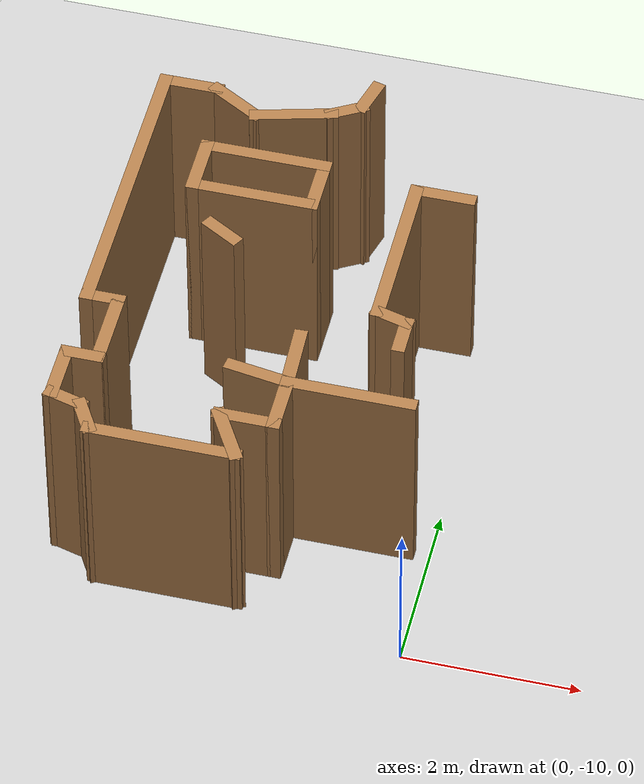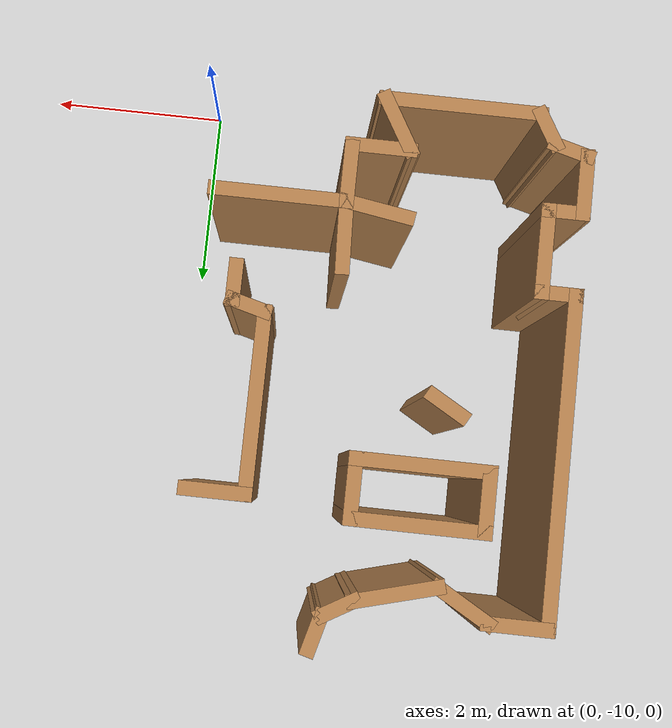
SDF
<sdf version="1.6">
 <world name="default">
  <model name="ground_plane">
   <static>1</static>
   <link name="link">
    <collision name="collision">
     <geometry><plane><normal>0 0 1</normal><size>100 100</size></plane></geometry>
     <surface><friction><ode><mu>100</mu><mu2>50</mu2></ode></friction></surface>
    </collision>
    <visual name="visual">
     <cast_shadows>0</cast_shadows>
     <geometry><plane><normal>0 0 1</normal><size>100 100</size></plane></geometry>
     <material>
      <script><uri>file://media/materials/scripts/gazebo.material</uri><name>Gazebo/Grey</name></script>
     </material>
    </visual>
   </link>
  </model>
  <model name="map_31">
   <link name="Wall_148">
    <pose>-2.51001 -8.20815 0 0 0 -0.158782</pose>
    <visual name="Wall_148_Visual">
     <pose>0 0 1.25 0 -0 0</pose>
     <geometry><box><size>0.796706 0.15 2.5</size></box></geometry>
     <material>
      <script><uri>file://media/materials/scripts/gazebo.material</uri><name>Gazebo/Wood</name></script>
      <ambient>1 1 1 1</ambient>
      <shader type="pixel"/>
     </material>
     <meta><layer>0</layer></meta>
    </visual>
    <collision name="Wall_148_Collision">
     <pose>0 0 1.25 0 -0 0</pose>
     <geometry><box><size>0.796706 0.15 2.5</size></box></geometry>
     <surface>
      <friction>
       <ode><mu>1</mu><mu2>1</mu2><fdir1>0 0 0</fdir1><slip1>0</slip1><slip2>0</slip2></ode>
       <torsional>
        <coefficient>1</coefficient>
        <patch_radius>0</patch_radius>
        <surface_radius>0</surface_radius>
        <use_patch_radius>1</use_patch_radius>
        <ode><slip>0</slip></ode>
       </torsional>
      </friction>
      <bounce><restitution_coefficient>0</restitution_coefficient><threshold>1e+06</threshold></bounce>
      <contact>
       <collide_without_contact>0</collide_without_contact>
       <collide_without_contact_bitmask>1</collide_without_contact_bitmask>
       <collide_bitmask>1</collide_bitmask>
       <ode>
        <soft_cfm>0</soft_cfm>
        <soft_erp>0.2</soft_erp>
        <kp>1e+13</kp>
        <kd>1</kd>
        <max_vel>0.01</max_vel>
        <min_depth>0</min_depth>
       </ode>
       <bullet>
        <split_impulse>1</split_impulse>
        <split_impulse_penetration_threshold>-0.01</split_impulse_penetration_threshold>
        <soft_cfm>0</soft_cfm>
        <soft_erp>0.2</soft_erp>
        <kp>1e+13</kp>
        <kd>1</kd>
       </bullet>
      </contact>
     </surface>
    </collision>
   </link>
   <link name="Wall_150">
    <pose>-2.20411 -7.91754 0 0 0 -1.53165</pose>
    <visual name="Wall_150_Visual">
     <pose>0 0 1.25 0 -0 0</pose>
     <geometry><box><size>0.833993 0.15 2.5</size></box></geometry>
     <material>
      <script><uri>file://media/materials/scripts/gazebo.material</uri><name>Gazebo/Wood</name></script>
      <ambient>1 1 1 1</ambient>
      <shader type="pixel"/>
     </material>
     <meta><layer>0</layer></meta>
    </visual>
    <collision name="Wall_150_Collision">
     <pose>0 0 1.25 0 -0 0</pose>
     <geometry><box><size>0.833993 0.15 2.5</size></box></geometry>
     <surface>
      <friction>
       <ode><mu>1</mu><mu2>1</mu2><fdir1>0 0 0</fdir1><slip1>0</slip1><slip2>0</slip2></ode>
       <torsional>
        <coefficient>1</coefficient>
        <patch_radius>0</patch_radius>
        <surface_radius>0</surface_radius>
        <use_patch_radius>1</use_patch_radius>
        <ode><slip>0</slip></ode>
       </torsional>
      </friction>
      <bounce><restitution_coefficient>0</restitution_coefficient><threshold>1e+06</threshold></bounce>
      <contact>
       <collide_without_contact>0</collide_without_contact>
       <collide_without_contact_bitmask>1</collide_without_contact_bitmask>
       <collide_bitmask>1</collide_bitmask>
       <ode>
        <soft_cfm>0</soft_cfm>
        <soft_erp>0.2</soft_erp>
        <kp>1e+13</kp>
        <kd>1</kd>
        <max_vel>0.01</max_vel>
        <min_depth>0</min_depth>
       </ode>
       <bullet>
        <split_impulse>1</split_impulse>
        <split_impulse_penetration_threshold>-0.01</split_impulse_penetration_threshold>
        <soft_cfm>0</soft_cfm>
        <soft_erp>0.2</soft_erp>
        <kp>1e+13</kp>
        <kd>1</kd>
       </bullet>
      </contact>
     </surface>
    </collision>
   </link>
   <link name="Wall_156">
    <pose>-3.41191 -6.28675 0 0 0 -0.523599</pose>
    <visual name="Wall_156_Visual">
     <pose>0 0 1.25 0 -0 0</pose>
     <geometry><box><size>0.5 0.15 2.5</size></box></geometry>
     <material>
      <script><uri>file://media/materials/scripts/gazebo.material</uri><name>Gazebo/Wood</name></script>
      <ambient>1 1 1 1</ambient>
      <shader type="pixel"/>
     </material>
     <meta><layer>0</layer></meta>
    </visual>
    <collision name="Wall_156_Collision">
     <pose>0 0 1.25 0 -0 0</pose>
     <geometry><box><size>0.5 0.15 2.5</size></box></geometry>
     <surface>
      <friction>
       <ode><mu>1</mu><mu2>1</mu2><fdir1>0 0 0</fdir1><slip1>0</slip1><slip2>0</slip2></ode>
       <torsional>
        <coefficient>1</coefficient>
        <patch_radius>0</patch_radius>
        <surface_radius>0</surface_radius>
        <use_patch_radius>1</use_patch_radius>
        <ode><slip>0</slip></ode>
       </torsional>
      </friction>
      <bounce><restitution_coefficient>0</restitution_coefficient><threshold>1e+06</threshold></bounce>
      <contact>
       <collide_without_contact>0</collide_without_contact>
       <collide_without_contact_bitmask>1</collide_without_contact_bitmask>
       <collide_bitmask>1</collide_bitmask>
       <ode>
        <soft_cfm>0</soft_cfm>
        <soft_erp>0.2</soft_erp>
        <kp>1e+13</kp>
        <kd>1</kd>
        <max_vel>0.01</max_vel>
        <min_depth>0</min_depth>
       </ode>
       <bullet>
        <split_impulse>1</split_impulse>
        <split_impulse_penetration_threshold>-0.01</split_impulse_penetration_threshold>
        <soft_cfm>0</soft_cfm>
        <soft_erp>0.2</soft_erp>
        <kp>1e+13</kp>
        <kd>1</kd>
       </bullet>
      </contact>
     </surface>
    </collision>
   </link>
   <link name="Wall_158">
    <pose>-3.89995 -5.36741 0 0 0 -1.5708</pose>
    <visual name="Wall_158_Visual">
     <pose>0 0 1.25 0 -0 0</pose>
     <geometry><box><size>0.75 0.15 2.5</size></box></geometry>
     <material>
      <script><uri>file://media/materials/scripts/gazebo.material</uri><name>Gazebo/Wood</name></script>
      <ambient>1 1 1 1</ambient>
      <shader type="pixel"/>
     </material>
     <meta><layer>0</layer></meta>
    </visual>
    <collision name="Wall_158_Collision">
     <pose>0 0 1.25 0 -0 0</pose>
     <geometry><box><size>0.75 0.15 2.5</size></box></geometry>
     <surface>
      <friction>
       <ode><mu>1</mu><mu2>1</mu2><fdir1>0 0 0</fdir1><slip1>0</slip1><slip2>0</slip2></ode>
       <torsional>
        <coefficient>1</coefficient>
        <patch_radius>0</patch_radius>
        <surface_radius>0</surface_radius>
        <use_patch_radius>1</use_patch_radius>
        <ode><slip>0</slip></ode>
       </torsional>
      </friction>
      <bounce><restitution_coefficient>0</restitution_coefficient><threshold>1e+06</threshold></bounce>
      <contact>
       <collide_without_contact>0</collide_without_contact>
       <collide_without_contact_bitmask>1</collide_without_contact_bitmask>
       <collide_bitmask>1</collide_bitmask>
       <ode>
        <soft_cfm>0</soft_cfm>
        <soft_erp>0.2</soft_erp>
        <kp>1e+13</kp>
        <kd>1</kd>
        <max_vel>0.01</max_vel>
        <min_depth>0</min_depth>
       </ode>
       <bullet>
        <split_impulse>1</split_impulse>
        <split_impulse_penetration_threshold>-0.01</split_impulse_penetration_threshold>
        <soft_cfm>0</soft_cfm>
        <soft_erp>0.2</soft_erp>
        <kp>1e+13</kp>
        <kd>1</kd>
       </bullet>
      </contact>
     </surface>
    </collision>
   </link>
   <link name="Wall_159">
    <pose>-3.22495 -5.66741 0 0 -0 0</pose>
    <visual name="Wall_159_Visual">
     <pose>0 0 1.25 0 -0 0</pose>
     <geometry><box><size>1.5 0.15 2.5</size></box></geometry>
     <material>
      <script><uri>file://media/materials/scripts/gazebo.material</uri><name>Gazebo/Wood</name></script>
      <ambient>1 1 1 1</ambient>
      <shader type="pixel"/>
     </material>
     <meta><layer>0</layer></meta>
    </visual>
    <collision name="Wall_159_Collision">
     <pose>0 0 1.25 0 -0 0</pose>
     <geometry><box><size>1.5 0.15 2.5</size></box></geometry>
     <surface>
      <friction>
       <ode><mu>1</mu><mu2>1</mu2><fdir1>0 0 0</fdir1><slip1>0</slip1><slip2>0</slip2></ode>
       <torsional>
        <coefficient>1</coefficient>
        <patch_radius>0</patch_radius>
        <surface_radius>0</surface_radius>
        <use_patch_radius>1</use_patch_radius>
        <ode><slip>0</slip></ode>
       </torsional>
      </friction>
      <bounce><restitution_coefficient>0</restitution_coefficient><threshold>1e+06</threshold></bounce>
      <contact>
       <collide_without_contact>0</collide_without_contact>
       <collide_without_contact_bitmask>1</collide_without_contact_bitmask>
       <collide_bitmask>1</collide_bitmask>
       <ode>
        <soft_cfm>0</soft_cfm>
        <soft_erp>0.2</soft_erp>
        <kp>1e+13</kp>
        <kd>1</kd>
        <max_vel>0.01</max_vel>
        <min_depth>0</min_depth>
       </ode>
       <bullet>
        <split_impulse>1</split_impulse>
        <split_impulse_penetration_threshold>-0.01</split_impulse_penetration_threshold>
        <soft_cfm>0</soft_cfm>
        <soft_erp>0.2</soft_erp>
        <kp>1e+13</kp>
        <kd>1</kd>
       </bullet>
      </contact>
     </surface>
    </collision>
   </link>
   <link name="Wall_160">
    <pose>-2.54996 -5.36741 0 0 -0 1.5708</pose>
    <visual name="Wall_160_Visual">
     <pose>0 0 1.25 0 -0 0</pose>
     <geometry><box><size>0.75 0.15 2.5</size></box></geometry>
     <material>
      <script><uri>file://media/materials/scripts/gazebo.material</uri><name>Gazebo/Wood</name></script>
      <ambient>1 1 1 1</ambient>
      <shader type="pixel"/>
     </material>
     <meta><layer>0</layer></meta>
    </visual>
    <collision name="Wall_160_Collision">
     <pose>0 0 1.25 0 -0 0</pose>
     <geometry><box><size>0.75 0.15 2.5</size></box></geometry>
     <surface>
      <friction>
       <ode><mu>1</mu><mu2>1</mu2><fdir1>0 0 0</fdir1><slip1>0</slip1><slip2>0</slip2></ode>
       <torsional>
        <coefficient>1</coefficient>
        <patch_radius>0</patch_radius>
        <surface_radius>0</surface_radius>
        <use_patch_radius>1</use_patch_radius>
        <ode><slip>0</slip></ode>
       </torsional>
      </friction>
      <bounce><restitution_coefficient>0</restitution_coefficient><threshold>1e+06</threshold></bounce>
      <contact>
       <collide_without_contact>0</collide_without_contact>
       <collide_without_contact_bitmask>1</collide_without_contact_bitmask>
       <collide_bitmask>1</collide_bitmask>
       <ode>
        <soft_cfm>0</soft_cfm>
        <soft_erp>0.2</soft_erp>
        <kp>1e+13</kp>
        <kd>1</kd>
        <max_vel>0.01</max_vel>
        <min_depth>0</min_depth>
       </ode>
       <bullet>
        <split_impulse>1</split_impulse>
        <split_impulse_penetration_threshold>-0.01</split_impulse_penetration_threshold>
        <soft_cfm>0</soft_cfm>
        <soft_erp>0.2</soft_erp>
        <kp>1e+13</kp>
        <kd>1</kd>
       </bullet>
      </contact>
     </surface>
    </collision>
   </link>
   <link name="Wall_161">
    <pose>-3.22495 -5.06741 0 0 -0 3.14159</pose>
    <visual name="Wall_161_Visual">
     <pose>0 0 1.25 0 -0 0</pose>
     <geometry><box><size>1.5 0.15 2.5</size></box></geometry>
     <material>
      <script><uri>file://media/materials/scripts/gazebo.material</uri><name>Gazebo/Wood</name></script>
      <ambient>1 1 1 1</ambient>
      <shader type="pixel"/>
     </material>
     <meta><layer>0</layer></meta>
    </visual>
    <collision name="Wall_161_Collision">
     <pose>0 0 1.25 0 -0 0</pose>
     <geometry><box><size>1.5 0.15 2.5</size></box></geometry>
     <surface>
      <friction>
       <ode><mu>1</mu><mu2>1</mu2><fdir1>0 0 0</fdir1><slip1>0</slip1><slip2>0</slip2></ode>
       <torsional>
        <coefficient>1</coefficient>
        <patch_radius>0</patch_radius>
        <surface_radius>0</surface_radius>
        <use_patch_radius>1</use_patch_radius>
        <ode><slip>0</slip></ode>
       </torsional>
      </friction>
      <bounce><restitution_coefficient>0</restitution_coefficient><threshold>1e+06</threshold></bounce>
      <contact>
       <collide_without_contact>0</collide_without_contact>
       <collide_without_contact_bitmask>1</collide_without_contact_bitmask>
       <collide_bitmask>1</collide_bitmask>
       <ode>
        <soft_cfm>0</soft_cfm>
        <soft_erp>0.2</soft_erp>
        <kp>1e+13</kp>
        <kd>1</kd>
        <max_vel>0.01</max_vel>
        <min_depth>0</min_depth>
       </ode>
       <bullet>
        <split_impulse>1</split_impulse>
        <split_impulse_penetration_threshold>-0.01</split_impulse_penetration_threshold>
        <soft_cfm>0</soft_cfm>
        <soft_erp>0.2</soft_erp>
        <kp>1e+13</kp>
        <kd>1</kd>
       </bullet>
      </contact>
     </surface>
    </collision>
   </link>
   <link name="Wall_28">
    <pose>-2.31474 -3.92116 0 0 0 -1.8326</pose>
    <visual name="Wall_28_Visual">
     <pose>0 0 1.25 0 -0 0</pose>
     <geometry><box><size>0.5 0.15 2.5</size></box></geometry>
     <material>
      <script><uri>file://media/materials/scripts/gazebo.material</uri><name>Gazebo/Wood</name></script>
      <ambient>1 1 1 1</ambient>
      <shader type="pixel"/>
     </material>
     <meta><layer>0</layer></meta>
    </visual>
    <collision name="Wall_28_Collision">
     <pose>0 0 1.25 0 -0 0</pose>
     <geometry><box><size>0.5 0.15 2.5</size></box></geometry>
     <surface>
      <friction>
       <ode><mu>1</mu><mu2>1</mu2><fdir1>0 0 0</fdir1><slip1>0</slip1><slip2>0</slip2></ode>
       <torsional>
        <coefficient>1</coefficient>
        <patch_radius>0</patch_radius>
        <surface_radius>0</surface_radius>
        <use_patch_radius>1</use_patch_radius>
        <ode><slip>0</slip></ode>
       </torsional>
      </friction>
      <bounce><restitution_coefficient>0</restitution_coefficient><threshold>1e+06</threshold></bounce>
      <contact>
       <collide_without_contact>0</collide_without_contact>
       <collide_without_contact_bitmask>1</collide_without_contact_bitmask>
       <collide_bitmask>1</collide_bitmask>
       <ode>
        <soft_cfm>0</soft_cfm>
        <soft_erp>0.2</soft_erp>
        <kp>1e+13</kp>
        <kd>1</kd>
        <max_vel>0.01</max_vel>
        <min_depth>0</min_depth>
       </ode>
       <bullet>
        <split_impulse>1</split_impulse>
        <split_impulse_penetration_threshold>-0.01</split_impulse_penetration_threshold>
        <soft_cfm>0</soft_cfm>
        <soft_erp>0.2</soft_erp>
        <kp>1e+13</kp>
        <kd>1</kd>
       </bullet>
      </contact>
     </surface>
    </collision>
   </link>
   <link name="Wall_29">
    <pose>-2.51159 -4.1777 0 0 0 -2.61799</pose>
    <visual name="Wall_29_Visual">
     <pose>0 0 1.25 0 -0 0</pose>
     <geometry><box><size>0.5 0.15 2.5</size></box></geometry>
     <material>
      <script><uri>file://media/materials/scripts/gazebo.material</uri><name>Gazebo/Wood</name></script>
      <ambient>1 1 1 1</ambient>
      <shader type="pixel"/>
     </material>
     <meta><layer>0</layer></meta>
    </visual>
    <collision name="Wall_29_Collision">
     <pose>0 0 1.25 0 -0 0</pose>
     <geometry><box><size>0.5 0.15 2.5</size></box></geometry>
     <surface>
      <friction>
       <ode><mu>1</mu><mu2>1</mu2><fdir1>0 0 0</fdir1><slip1>0</slip1><slip2>0</slip2></ode>
       <torsional>
        <coefficient>1</coefficient>
        <patch_radius>0</patch_radius>
        <surface_radius>0</surface_radius>
        <use_patch_radius>1</use_patch_radius>
        <ode><slip>0</slip></ode>
       </torsional>
      </friction>
      <bounce><restitution_coefficient>0</restitution_coefficient><threshold>1e+06</threshold></bounce>
      <contact>
       <collide_without_contact>0</collide_without_contact>
       <collide_without_contact_bitmask>1</collide_without_contact_bitmask>
       <collide_bitmask>1</collide_bitmask>
       <ode>
        <soft_cfm>0</soft_cfm>
        <soft_erp>0.2</soft_erp>
        <kp>1e+13</kp>
        <kd>1</kd>
        <max_vel>0.01</max_vel>
        <min_depth>0</min_depth>
       </ode>
       <bullet>
        <split_impulse>1</split_impulse>
        <split_impulse_penetration_threshold>-0.01</split_impulse_penetration_threshold>
        <soft_cfm>0</soft_cfm>
        <soft_erp>0.2</soft_erp>
        <kp>1e+13</kp>
        <kd>1</kd>
       </bullet>
      </contact>
     </surface>
    </collision>
   </link>
   <link name="Wall_32">
    <pose>-3.07367 -4.3752 0 0 0 -2.87979</pose>
    <visual name="Wall_32_Visual">
     <pose>0 0 1.25 0 -0 0</pose>
     <geometry><box><size>1 0.15 2.5</size></box></geometry>
     <material>
      <script><uri>file://media/materials/scripts/gazebo.material</uri><name>Gazebo/Wood</name></script>
      <ambient>1 1 1 1</ambient>
      <shader type="pixel"/>
     </material>
     <meta><layer>0</layer></meta>
    </visual>
    <collision name="Wall_32_Collision">
     <pose>0 0 1.25 0 -0 0</pose>
     <geometry><box><size>1 0.15 2.5</size></box></geometry>
     <surface>
      <friction>
       <ode><mu>1</mu><mu2>1</mu2><fdir1>0 0 0</fdir1><slip1>0</slip1><slip2>0</slip2></ode>
       <torsional>
        <coefficient>1</coefficient>
        <patch_radius>0</patch_radius>
        <surface_radius>0</surface_radius>
        <use_patch_radius>1</use_patch_radius>
        <ode><slip>0</slip></ode>
       </torsional>
      </friction>
      <bounce><restitution_coefficient>0</restitution_coefficient><threshold>1e+06</threshold></bounce>
      <contact>
       <collide_without_contact>0</collide_without_contact>
       <collide_without_contact_bitmask>1</collide_without_contact_bitmask>
       <collide_bitmask>1</collide_bitmask>
       <ode>
        <soft_cfm>0</soft_cfm>
        <soft_erp>0.2</soft_erp>
        <kp>1e+13</kp>
        <kd>1</kd>
        <max_vel>0.01</max_vel>
        <min_depth>0</min_depth>
       </ode>
       <bullet>
        <split_impulse>1</split_impulse>
        <split_impulse_penetration_threshold>-0.01</split_impulse_penetration_threshold>
        <soft_cfm>0</soft_cfm>
        <soft_erp>0.2</soft_erp>
        <kp>1e+13</kp>
        <kd>1</kd>
       </bullet>
      </contact>
     </surface>
    </collision>
   </link>
   <link name="Wall_33">
    <pose>-3.74399 -4.3352 0 0 -0 2.61799</pose>
    <visual name="Wall_33_Visual">
     <pose>0 0 1.25 0 -0 0</pose>
     <geometry><box><size>0.75 0.15 2.5</size></box></geometry>
     <material>
      <script><uri>file://media/materials/scripts/gazebo.material</uri><name>Gazebo/Wood</name></script>
      <ambient>1 1 1 1</ambient>
      <shader type="pixel"/>
     </material>
     <meta><layer>0</layer></meta>
    </visual>
    <collision name="Wall_33_Collision">
     <pose>0 0 1.25 0 -0 0</pose>
     <geometry><box><size>0.75 0.15 2.5</size></box></geometry>
     <surface>
      <friction>
       <ode><mu>1</mu><mu2>1</mu2><fdir1>0 0 0</fdir1><slip1>0</slip1><slip2>0</slip2></ode>
       <torsional>
        <coefficient>1</coefficient>
        <patch_radius>0</patch_radius>
        <surface_radius>0</surface_radius>
        <use_patch_radius>1</use_patch_radius>
        <ode><slip>0</slip></ode>
       </torsional>
      </friction>
      <bounce><restitution_coefficient>0</restitution_coefficient><threshold>1e+06</threshold></bounce>
      <contact>
       <collide_without_contact>0</collide_without_contact>
       <collide_without_contact_bitmask>1</collide_without_contact_bitmask>
       <collide_bitmask>1</collide_bitmask>
       <ode>
        <soft_cfm>0</soft_cfm>
        <soft_erp>0.2</soft_erp>
        <kp>1e+13</kp>
        <kd>1</kd>
        <max_vel>0.01</max_vel>
        <min_depth>0</min_depth>
       </ode>
       <bullet>
        <split_impulse>1</split_impulse>
        <split_impulse_penetration_threshold>-0.01</split_impulse_penetration_threshold>
        <soft_cfm>0</soft_cfm>
        <soft_erp>0.2</soft_erp>
        <kp>1e+13</kp>
        <kd>1</kd>
       </bullet>
      </contact>
     </surface>
    </collision>
   </link>
   <link name="Wall_34">
    <pose>-4.3038 -4.1852 0 0 -0 3.14159</pose>
    <visual name="Wall_34_Visual">
     <pose>0 0 1.25 0 -0 0</pose>
     <geometry><box><size>0.75 0.15 2.5</size></box></geometry>
     <material>
      <script><uri>file://media/materials/scripts/gazebo.material</uri><name>Gazebo/Wood</name></script>
      <ambient>1 1 1 1</ambient>
      <shader type="pixel"/>
     </material>
     <meta><layer>0</layer></meta>
    </visual>
    <collision name="Wall_34_Collision">
     <pose>0 0 1.25 0 -0 0</pose>
     <geometry><box><size>0.75 0.15 2.5</size></box></geometry>
     <surface>
      <friction>
       <ode><mu>1</mu><mu2>1</mu2><fdir1>0 0 0</fdir1><slip1>0</slip1><slip2>0</slip2></ode>
       <torsional>
        <coefficient>1</coefficient>
        <patch_radius>0</patch_radius>
        <surface_radius>0</surface_radius>
        <use_patch_radius>1</use_patch_radius>
        <ode><slip>0</slip></ode>
       </torsional>
      </friction>
      <bounce><restitution_coefficient>0</restitution_coefficient><threshold>1e+06</threshold></bounce>
      <contact>
       <collide_without_contact>0</collide_without_contact>
       <collide_without_contact_bitmask>1</collide_without_contact_bitmask>
       <collide_bitmask>1</collide_bitmask>
       <ode>
        <soft_cfm>0</soft_cfm>
        <soft_erp>0.2</soft_erp>
        <kp>1e+13</kp>
        <kd>1</kd>
        <max_vel>0.01</max_vel>
        <min_depth>0</min_depth>
       </ode>
       <bullet>
        <split_impulse>1</split_impulse>
        <split_impulse_penetration_threshold>-0.01</split_impulse_penetration_threshold>
        <soft_cfm>0</soft_cfm>
        <soft_erp>0.2</soft_erp>
        <kp>1e+13</kp>
        <kd>1</kd>
       </bullet>
      </contact>
     </surface>
    </collision>
   </link>
   <link name="Wall_35">
    <pose>-4.6038 -5.8602 0 0 0 -1.5708</pose>
    <visual name="Wall_35_Visual">
     <pose>0 0 1.25 0 -0 0</pose>
     <geometry><box><size>3.5 0.15 2.5</size></box></geometry>
     <material>
      <script><uri>file://media/materials/scripts/gazebo.material</uri><name>Gazebo/Wood</name></script>
      <ambient>1 1 1 1</ambient>
      <shader type="pixel"/>
     </material>
     <meta><layer>0</layer></meta>
    </visual>
    <collision name="Wall_35_Collision">
     <pose>0 0 1.25 0 -0 0</pose>
     <geometry><box><size>3.5 0.15 2.5</size></box></geometry>
     <surface>
      <friction>
       <ode><mu>1</mu><mu2>1</mu2><fdir1>0 0 0</fdir1><slip1>0</slip1><slip2>0</slip2></ode>
       <torsional>
        <coefficient>1</coefficient>
        <patch_radius>0</patch_radius>
        <surface_radius>0</surface_radius>
        <use_patch_radius>1</use_patch_radius>
        <ode><slip>0</slip></ode>
       </torsional>
      </friction>
      <bounce><restitution_coefficient>0</restitution_coefficient><threshold>1e+06</threshold></bounce>
      <contact>
       <collide_without_contact>0</collide_without_contact>
       <collide_without_contact_bitmask>1</collide_without_contact_bitmask>
       <collide_bitmask>1</collide_bitmask>
       <ode>
        <soft_cfm>0</soft_cfm>
        <soft_erp>0.2</soft_erp>
        <kp>1e+13</kp>
        <kd>1</kd>
        <max_vel>0.01</max_vel>
        <min_depth>0</min_depth>
       </ode>
       <bullet>
        <split_impulse>1</split_impulse>
        <split_impulse_penetration_threshold>-0.01</split_impulse_penetration_threshold>
        <soft_cfm>0</soft_cfm>
        <soft_erp>0.2</soft_erp>
        <kp>1e+13</kp>
        <kd>1</kd>
       </bullet>
      </contact>
     </surface>
    </collision>
   </link>
   <link name="Wall_36">
    <pose>-4.4288 -7.5352 0 0 -0 0</pose>
    <visual name="Wall_36_Visual">
     <pose>0 0 1.25 0 -0 0</pose>
     <geometry><box><size>0.5 0.15 2.5</size></box></geometry>
     <material>
      <script><uri>file://media/materials/scripts/gazebo.material</uri><name>Gazebo/Wood</name></script>
      <ambient>1 1 1 1</ambient>
      <shader type="pixel"/>
     </material>
     <meta><layer>0</layer></meta>
    </visual>
    <collision name="Wall_36_Collision">
     <pose>0 0 1.25 0 -0 0</pose>
     <geometry><box><size>0.5 0.15 2.5</size></box></geometry>
     <surface>
      <friction>
       <ode><mu>1</mu><mu2>1</mu2><fdir1>0 0 0</fdir1><slip1>0</slip1><slip2>0</slip2></ode>
       <torsional>
        <coefficient>1</coefficient>
        <patch_radius>0</patch_radius>
        <surface_radius>0</surface_radius>
        <use_patch_radius>1</use_patch_radius>
        <ode><slip>0</slip></ode>
       </torsional>
      </friction>
      <bounce><restitution_coefficient>0</restitution_coefficient><threshold>1e+06</threshold></bounce>
      <contact>
       <collide_without_contact>0</collide_without_contact>
       <collide_without_contact_bitmask>1</collide_without_contact_bitmask>
       <collide_bitmask>1</collide_bitmask>
       <ode>
        <soft_cfm>0</soft_cfm>
        <soft_erp>0.2</soft_erp>
        <kp>1e+13</kp>
        <kd>1</kd>
        <max_vel>0.01</max_vel>
        <min_depth>0</min_depth>
       </ode>
       <bullet>
        <split_impulse>1</split_impulse>
        <split_impulse_penetration_threshold>-0.01</split_impulse_penetration_threshold>
        <soft_cfm>0</soft_cfm>
        <soft_erp>0.2</soft_erp>
        <kp>1e+13</kp>
        <kd>1</kd>
       </bullet>
      </contact>
     </surface>
    </collision>
   </link>
   <link name="Wall_37">
    <pose>-4.2538 -7.9602 0 0 0 -1.5708</pose>
    <visual name="Wall_37_Visual">
     <pose>0 0 1.25 0 -0 0</pose>
     <geometry><box><size>1 0.15 2.5</size></box></geometry>
     <material>
      <script><uri>file://media/materials/scripts/gazebo.material</uri><name>Gazebo/Wood</name></script>
      <ambient>1 1 1 1</ambient>
      <shader type="pixel"/>
     </material>
     <meta><layer>0</layer></meta>
    </visual>
    <collision name="Wall_37_Collision">
     <pose>0 0 1.25 0 -0 0</pose>
     <geometry><box><size>1 0.15 2.5</size></box></geometry>
     <surface>
      <friction>
       <ode><mu>1</mu><mu2>1</mu2><fdir1>0 0 0</fdir1><slip1>0</slip1><slip2>0</slip2></ode>
       <torsional>
        <coefficient>1</coefficient>
        <patch_radius>0</patch_radius>
        <surface_radius>0</surface_radius>
        <use_patch_radius>1</use_patch_radius>
        <ode><slip>0</slip></ode>
       </torsional>
      </friction>
      <bounce><restitution_coefficient>0</restitution_coefficient><threshold>1e+06</threshold></bounce>
      <contact>
       <collide_without_contact>0</collide_without_contact>
       <collide_without_contact_bitmask>1</collide_without_contact_bitmask>
       <collide_bitmask>1</collide_bitmask>
       <ode>
        <soft_cfm>0</soft_cfm>
        <soft_erp>0.2</soft_erp>
        <kp>1e+13</kp>
        <kd>1</kd>
        <max_vel>0.01</max_vel>
        <min_depth>0</min_depth>
       </ode>
       <bullet>
        <split_impulse>1</split_impulse>
        <split_impulse_penetration_threshold>-0.01</split_impulse_penetration_threshold>
        <soft_cfm>0</soft_cfm>
        <soft_erp>0.2</soft_erp>
        <kp>1e+13</kp>
        <kd>1</kd>
       </bullet>
      </contact>
     </surface>
    </collision>
   </link>
   <link name="Wall_38">
    <pose>-4.4288 -8.3852 0 0 -0 3.14159</pose>
    <visual name="Wall_38_Visual">
     <pose>0 0 1.25 0 -0 0</pose>
     <geometry><box><size>0.5 0.15 2.5</size></box></geometry>
     <material>
      <script><uri>file://media/materials/scripts/gazebo.material</uri><name>Gazebo/Wood</name></script>
      <ambient>1 1 1 1</ambient>
      <shader type="pixel"/>
     </material>
     <meta><layer>0</layer></meta>
    </visual>
    <collision name="Wall_38_Collision">
     <pose>0 0 1.25 0 -0 0</pose>
     <geometry><box><size>0.5 0.15 2.5</size></box></geometry>
     <surface>
      <friction>
       <ode><mu>1</mu><mu2>1</mu2><fdir1>0 0 0</fdir1><slip1>0</slip1><slip2>0</slip2></ode>
       <torsional>
        <coefficient>1</coefficient>
        <patch_radius>0</patch_radius>
        <surface_radius>0</surface_radius>
        <use_patch_radius>1</use_patch_radius>
        <ode><slip>0</slip></ode>
       </torsional>
      </friction>
      <bounce><restitution_coefficient>0</restitution_coefficient><threshold>1e+06</threshold></bounce>
      <contact>
       <collide_without_contact>0</collide_without_contact>
       <collide_without_contact_bitmask>1</collide_without_contact_bitmask>
       <collide_bitmask>1</collide_bitmask>
       <ode>
        <soft_cfm>0</soft_cfm>
        <soft_erp>0.2</soft_erp>
        <kp>1e+13</kp>
        <kd>1</kd>
        <max_vel>0.01</max_vel>
        <min_depth>0</min_depth>
       </ode>
       <bullet>
        <split_impulse>1</split_impulse>
        <split_impulse_penetration_threshold>-0.01</split_impulse_penetration_threshold>
        <soft_cfm>0</soft_cfm>
        <soft_erp>0.2</soft_erp>
        <kp>1e+13</kp>
        <kd>1</kd>
       </bullet>
      </contact>
     </surface>
    </collision>
   </link>
   <link name="Wall_39">
    <pose>-4.6038 -8.6852 0 0 0 -1.5708</pose>
    <visual name="Wall_39_Visual">
     <pose>0 0 1.25 0 -0 0</pose>
     <geometry><box><size>0.75 0.15 2.5</size></box></geometry>
     <material>
      <script><uri>file://media/materials/scripts/gazebo.material</uri><name>Gazebo/Wood</name></script>
      <ambient>1 1 1 1</ambient>
      <shader type="pixel"/>
     </material>
     <meta><layer>0</layer></meta>
    </visual>
    <collision name="Wall_39_Collision">
     <pose>0 0 1.25 0 -0 0</pose>
     <geometry><box><size>0.75 0.15 2.5</size></box></geometry>
     <surface>
      <friction>
       <ode><mu>1</mu><mu2>1</mu2><fdir1>0 0 0</fdir1><slip1>0</slip1><slip2>0</slip2></ode>
       <torsional>
        <coefficient>1</coefficient>
        <patch_radius>0</patch_radius>
        <surface_radius>0</surface_radius>
        <use_patch_radius>1</use_patch_radius>
        <ode><slip>0</slip></ode>
       </torsional>
      </friction>
      <bounce><restitution_coefficient>0</restitution_coefficient><threshold>1e+06</threshold></bounce>
      <contact>
       <collide_without_contact>0</collide_without_contact>
       <collide_without_contact_bitmask>1</collide_without_contact_bitmask>
       <collide_bitmask>1</collide_bitmask>
       <ode>
        <soft_cfm>0</soft_cfm>
        <soft_erp>0.2</soft_erp>
        <kp>1e+13</kp>
        <kd>1</kd>
        <max_vel>0.01</max_vel>
        <min_depth>0</min_depth>
       </ode>
       <bullet>
        <split_impulse>1</split_impulse>
        <split_impulse_penetration_threshold>-0.01</split_impulse_penetration_threshold>
        <soft_cfm>0</soft_cfm>
        <soft_erp>0.2</soft_erp>
        <kp>1e+13</kp>
        <kd>1</kd>
       </bullet>
      </contact>
     </surface>
    </collision>
   </link>
   <link name="Wall_40">
    <pose>-4.43476 -9.03049 0 0 0 -0.261799</pose>
    <visual name="Wall_40_Visual">
     <pose>0 0 1.25 0 -0 0</pose>
     <geometry><box><size>0.5 0.15 2.5</size></box></geometry>
     <material>
      <script><uri>file://media/materials/scripts/gazebo.material</uri><name>Gazebo/Wood</name></script>
      <ambient>1 1 1 1</ambient>
      <shader type="pixel"/>
     </material>
     <meta><layer>0</layer></meta>
    </visual>
    <collision name="Wall_40_Collision">
     <pose>0 0 1.25 0 -0 0</pose>
     <geometry><box><size>0.5 0.15 2.5</size></box></geometry>
     <surface>
      <friction>
       <ode><mu>1</mu><mu2>1</mu2><fdir1>0 0 0</fdir1><slip1>0</slip1><slip2>0</slip2></ode>
       <torsional>
        <coefficient>1</coefficient>
        <patch_radius>0</patch_radius>
        <surface_radius>0</surface_radius>
        <use_patch_radius>1</use_patch_radius>
        <ode><slip>0</slip></ode>
       </torsional>
      </friction>
      <bounce><restitution_coefficient>0</restitution_coefficient><threshold>1e+06</threshold></bounce>
      <contact>
       <collide_without_contact>0</collide_without_contact>
       <collide_without_contact_bitmask>1</collide_without_contact_bitmask>
       <collide_bitmask>1</collide_bitmask>
       <ode>
        <soft_cfm>0</soft_cfm>
        <soft_erp>0.2</soft_erp>
        <kp>1e+13</kp>
        <kd>1</kd>
        <max_vel>0.01</max_vel>
        <min_depth>0</min_depth>
       </ode>
       <bullet>
        <split_impulse>1</split_impulse>
        <split_impulse_penetration_threshold>-0.01</split_impulse_penetration_threshold>
        <soft_cfm>0</soft_cfm>
        <soft_erp>0.2</soft_erp>
        <kp>1e+13</kp>
        <kd>1</kd>
       </bullet>
      </contact>
     </surface>
    </collision>
   </link>
   <link name="Wall_41">
    <pose>-4.17823 -9.22734 0 0 0 -1.0472</pose>
    <visual name="Wall_41_Visual">
     <pose>0 0 1.25 0 -0 0</pose>
     <geometry><box><size>0.5 0.15 2.5</size></box></geometry>
     <material>
      <script><uri>file://media/materials/scripts/gazebo.material</uri><name>Gazebo/Wood</name></script>
      <ambient>1 1 1 1</ambient>
      <shader type="pixel"/>
     </material>
     <meta><layer>0</layer></meta>
    </visual>
    <collision name="Wall_41_Collision">
     <pose>0 0 1.25 0 -0 0</pose>
     <geometry><box><size>0.5 0.15 2.5</size></box></geometry>
     <surface>
      <friction>
       <ode><mu>1</mu><mu2>1</mu2><fdir1>0 0 0</fdir1><slip1>0</slip1><slip2>0</slip2></ode>
       <torsional>
        <coefficient>1</coefficient>
        <patch_radius>0</patch_radius>
        <surface_radius>0</surface_radius>
        <use_patch_radius>1</use_patch_radius>
        <ode><slip>0</slip></ode>
       </torsional>
      </friction>
      <bounce><restitution_coefficient>0</restitution_coefficient><threshold>1e+06</threshold></bounce>
      <contact>
       <collide_without_contact>0</collide_without_contact>
       <collide_without_contact_bitmask>1</collide_without_contact_bitmask>
       <collide_bitmask>1</collide_bitmask>
       <ode>
        <soft_cfm>0</soft_cfm>
        <soft_erp>0.2</soft_erp>
        <kp>1e+13</kp>
        <kd>1</kd>
        <max_vel>0.01</max_vel>
        <min_depth>0</min_depth>
       </ode>
       <bullet>
        <split_impulse>1</split_impulse>
        <split_impulse_penetration_threshold>-0.01</split_impulse_penetration_threshold>
        <soft_cfm>0</soft_cfm>
        <soft_erp>0.2</soft_erp>
        <kp>1e+13</kp>
        <kd>1</kd>
       </bullet>
      </contact>
     </surface>
    </collision>
   </link>
   <link name="Wall_42">
    <pose>-3.29073 -9.37889 0 0 -0 0</pose>
    <visual name="Wall_42_Visual">
     <pose>0 0 1.25 0 -0 0</pose>
     <geometry><box><size>1.75 0.15 2.5</size></box></geometry>
     <material>
      <script><uri>file://media/materials/scripts/gazebo.material</uri><name>Gazebo/Wood</name></script>
      <ambient>1 1 1 1</ambient>
      <shader type="pixel"/>
     </material>
     <meta><layer>0</layer></meta>
    </visual>
    <collision name="Wall_42_Collision">
     <pose>0 0 1.25 0 -0 0</pose>
     <geometry><box><size>1.75 0.15 2.5</size></box></geometry>
     <surface>
      <friction>
       <ode><mu>1</mu><mu2>1</mu2><fdir1>0 0 0</fdir1><slip1>0</slip1><slip2>0</slip2></ode>
       <torsional>
        <coefficient>1</coefficient>
        <patch_radius>0</patch_radius>
        <surface_radius>0</surface_radius>
        <use_patch_radius>1</use_patch_radius>
        <ode><slip>0</slip></ode>
       </torsional>
      </friction>
      <bounce><restitution_coefficient>0</restitution_coefficient><threshold>1e+06</threshold></bounce>
      <contact>
       <collide_without_contact>0</collide_without_contact>
       <collide_without_contact_bitmask>1</collide_without_contact_bitmask>
       <collide_bitmask>1</collide_bitmask>
       <ode>
        <soft_cfm>0</soft_cfm>
        <soft_erp>0.2</soft_erp>
        <kp>1e+13</kp>
        <kd>1</kd>
        <max_vel>0.01</max_vel>
        <min_depth>0</min_depth>
       </ode>
       <bullet>
        <split_impulse>1</split_impulse>
        <split_impulse_penetration_threshold>-0.01</split_impulse_penetration_threshold>
        <soft_cfm>0</soft_cfm>
        <soft_erp>0.2</soft_erp>
        <kp>1e+13</kp>
        <kd>1</kd>
       </bullet>
      </contact>
     </surface>
    </collision>
   </link>
   <link name="Wall_43">
    <pose>-2.64073 -9.11908 0 0 -0 2.0944</pose>
    <visual name="Wall_43_Visual">
     <pose>0 0 1.25 0 -0 0</pose>
     <geometry><box><size>0.75 0.15 2.5</size></box></geometry>
     <material>
      <script><uri>file://media/materials/scripts/gazebo.material</uri><name>Gazebo/Wood</name></script>
      <ambient>1 1 1 1</ambient>
      <shader type="pixel"/>
     </material>
     <meta><layer>0</layer></meta>
    </visual>
    <collision name="Wall_43_Collision">
     <pose>0 0 1.25 0 -0 0</pose>
     <geometry><box><size>0.75 0.15 2.5</size></box></geometry>
     <surface>
      <friction>
       <ode><mu>1</mu><mu2>1</mu2><fdir1>0 0 0</fdir1><slip1>0</slip1><slip2>0</slip2></ode>
       <torsional>
        <coefficient>1</coefficient>
        <patch_radius>0</patch_radius>
        <surface_radius>0</surface_radius>
        <use_patch_radius>1</use_patch_radius>
        <ode><slip>0</slip></ode>
       </torsional>
      </friction>
      <bounce><restitution_coefficient>0</restitution_coefficient><threshold>1e+06</threshold></bounce>
      <contact>
       <collide_without_contact>0</collide_without_contact>
       <collide_without_contact_bitmask>1</collide_without_contact_bitmask>
       <collide_bitmask>1</collide_bitmask>
       <ode>
        <soft_cfm>0</soft_cfm>
        <soft_erp>0.2</soft_erp>
        <kp>1e+13</kp>
        <kd>1</kd>
        <max_vel>0.01</max_vel>
        <min_depth>0</min_depth>
       </ode>
       <bullet>
        <split_impulse>1</split_impulse>
        <split_impulse_penetration_threshold>-0.01</split_impulse_penetration_threshold>
        <soft_cfm>0</soft_cfm>
        <soft_erp>0.2</soft_erp>
        <kp>1e+13</kp>
        <kd>1</kd>
       </bullet>
      </contact>
     </surface>
    </collision>
   </link>
   <link name="Wall_44">
    <pose>-2.49072 -8.85928 0 0 -0 0</pose>
    <visual name="Wall_44_Visual">
     <pose>0 0 1.25 0 -0 0</pose>
     <geometry><box><size>0.75 0.15 2.5</size></box></geometry>
     <material>
      <script><uri>file://media/materials/scripts/gazebo.material</uri><name>Gazebo/Wood</name></script>
      <ambient>1 1 1 1</ambient>
      <shader type="pixel"/>
     </material>
     <meta><layer>0</layer></meta>
    </visual>
    <collision name="Wall_44_Collision">
     <pose>0 0 1.25 0 -0 0</pose>
     <geometry><box><size>0.75 0.15 2.5</size></box></geometry>
     <surface>
      <friction>
       <ode><mu>1</mu><mu2>1</mu2><fdir1>0 0 0</fdir1><slip1>0</slip1><slip2>0</slip2></ode>
       <torsional>
        <coefficient>1</coefficient>
        <patch_radius>0</patch_radius>
        <surface_radius>0</surface_radius>
        <use_patch_radius>1</use_patch_radius>
        <ode><slip>0</slip></ode>
       </torsional>
      </friction>
      <bounce><restitution_coefficient>0</restitution_coefficient><threshold>1e+06</threshold></bounce>
      <contact>
       <collide_without_contact>0</collide_without_contact>
       <collide_without_contact_bitmask>1</collide_without_contact_bitmask>
       <collide_bitmask>1</collide_bitmask>
       <ode>
        <soft_cfm>0</soft_cfm>
        <soft_erp>0.2</soft_erp>
        <kp>1e+13</kp>
        <kd>1</kd>
        <max_vel>0.01</max_vel>
        <min_depth>0</min_depth>
       </ode>
       <bullet>
        <split_impulse>1</split_impulse>
        <split_impulse_penetration_threshold>-0.01</split_impulse_penetration_threshold>
        <soft_cfm>0</soft_cfm>
        <soft_erp>0.2</soft_erp>
        <kp>1e+13</kp>
        <kd>1</kd>
       </bullet>
      </contact>
     </surface>
    </collision>
   </link>
   <link name="Wall_45">
    <pose>-2.19073 -8.55928 0 0 -0 1.5708</pose>
    <visual name="Wall_45_Visual">
     <pose>0 0 1.25 0 -0 0</pose>
     <geometry><box><size>0.75 0.15 2.5</size></box></geometry>
     <material>
      <script><uri>file://media/materials/scripts/gazebo.material</uri><name>Gazebo/Wood</name></script>
      <ambient>1 1 1 1</ambient>
      <shader type="pixel"/>
     </material>
     <meta><layer>0</layer></meta>
    </visual>
    <collision name="Wall_45_Collision">
     <pose>0 0 1.25 0 -0 0</pose>
     <geometry><box><size>0.75 0.15 2.5</size></box></geometry>
     <surface>
      <friction>
       <ode><mu>1</mu><mu2>1</mu2><fdir1>0 0 0</fdir1><slip1>0</slip1><slip2>0</slip2></ode>
       <torsional>
        <coefficient>1</coefficient>
        <patch_radius>0</patch_radius>
        <surface_radius>0</surface_radius>
        <use_patch_radius>1</use_patch_radius>
        <ode><slip>0</slip></ode>
       </torsional>
      </friction>
      <bounce><restitution_coefficient>0</restitution_coefficient><threshold>1e+06</threshold></bounce>
      <contact>
       <collide_without_contact>0</collide_without_contact>
       <collide_without_contact_bitmask>1</collide_without_contact_bitmask>
       <collide_bitmask>1</collide_bitmask>
       <ode>
        <soft_cfm>0</soft_cfm>
        <soft_erp>0.2</soft_erp>
        <kp>1e+13</kp>
        <kd>1</kd>
        <max_vel>0.01</max_vel>
        <min_depth>0</min_depth>
       </ode>
       <bullet>
        <split_impulse>1</split_impulse>
        <split_impulse_penetration_threshold>-0.01</split_impulse_penetration_threshold>
        <soft_cfm>0</soft_cfm>
        <soft_erp>0.2</soft_erp>
        <kp>1e+13</kp>
        <kd>1</kd>
       </bullet>
      </contact>
     </surface>
    </collision>
   </link>
   <link name="Wall_46">
    <pose>-1.51572 -8.25928 0 0 -0 0</pose>
    <visual name="Wall_46_Visual">
     <pose>0 0 1.25 0 -0 0</pose>
     <geometry><box><size>1.5 0.15 2.5</size></box></geometry>
     <material>
      <script><uri>file://media/materials/scripts/gazebo.material</uri><name>Gazebo/Wood</name></script>
      <ambient>1 1 1 1</ambient>
      <shader type="pixel"/>
     </material>
     <meta><layer>0</layer></meta>
    </visual>
    <collision name="Wall_46_Collision">
     <pose>0 0 1.25 0 -0 0</pose>
     <geometry><box><size>1.5 0.15 2.5</size></box></geometry>
     <surface>
      <friction>
       <ode><mu>1</mu><mu2>1</mu2><fdir1>0 0 0</fdir1><slip1>0</slip1><slip2>0</slip2></ode>
       <torsional>
        <coefficient>1</coefficient>
        <patch_radius>0</patch_radius>
        <surface_radius>0</surface_radius>
        <use_patch_radius>1</use_patch_radius>
        <ode><slip>0</slip></ode>
       </torsional>
      </friction>
      <bounce><restitution_coefficient>0</restitution_coefficient><threshold>1e+06</threshold></bounce>
      <contact>
       <collide_without_contact>0</collide_without_contact>
       <collide_without_contact_bitmask>1</collide_without_contact_bitmask>
       <collide_bitmask>1</collide_bitmask>
       <ode>
        <soft_cfm>0</soft_cfm>
        <soft_erp>0.2</soft_erp>
        <kp>1e+13</kp>
        <kd>1</kd>
        <max_vel>0.01</max_vel>
        <min_depth>0</min_depth>
       </ode>
       <bullet>
        <split_impulse>1</split_impulse>
        <split_impulse_penetration_threshold>-0.01</split_impulse_penetration_threshold>
        <soft_cfm>0</soft_cfm>
        <soft_erp>0.2</soft_erp>
        <kp>1e+13</kp>
        <kd>1</kd>
       </bullet>
      </contact>
     </surface>
    </collision>
   </link>
   <link name="Wall_50">
    <pose>-1.14383 -7.30928 0 0 -0 1.5708</pose>
    <visual name="Wall_50_Visual">
     <pose>0 0 1.25 0 -0 0</pose>
     <geometry><box><size>0.5 0.15 2.5</size></box></geometry>
     <material>
      <script><uri>file://media/materials/scripts/gazebo.material</uri><name>Gazebo/Wood</name></script>
      <ambient>1 1 1 1</ambient>
      <shader type="pixel"/>
     </material>
     <meta><layer>0</layer></meta>
    </visual>
    <collision name="Wall_50_Collision">
     <pose>0 0 1.25 0 -0 0</pose>
     <geometry><box><size>0.5 0.15 2.5</size></box></geometry>
     <surface>
      <friction>
       <ode><mu>1</mu><mu2>1</mu2><fdir1>0 0 0</fdir1><slip1>0</slip1><slip2>0</slip2></ode>
       <torsional>
        <coefficient>1</coefficient>
        <patch_radius>0</patch_radius>
        <surface_radius>0</surface_radius>
        <use_patch_radius>1</use_patch_radius>
        <ode><slip>0</slip></ode>
       </torsional>
      </friction>
      <bounce><restitution_coefficient>0</restitution_coefficient><threshold>1e+06</threshold></bounce>
      <contact>
       <collide_without_contact>0</collide_without_contact>
       <collide_without_contact_bitmask>1</collide_without_contact_bitmask>
       <collide_bitmask>1</collide_bitmask>
       <ode>
        <soft_cfm>0</soft_cfm>
        <soft_erp>0.2</soft_erp>
        <kp>1e+13</kp>
        <kd>1</kd>
        <max_vel>0.01</max_vel>
        <min_depth>0</min_depth>
       </ode>
       <bullet>
        <split_impulse>1</split_impulse>
        <split_impulse_penetration_threshold>-0.01</split_impulse_penetration_threshold>
        <soft_cfm>0</soft_cfm>
        <soft_erp>0.2</soft_erp>
        <kp>1e+13</kp>
        <kd>1</kd>
       </bullet>
      </contact>
     </surface>
    </collision>
   </link>
   <link name="Wall_51">
    <pose>-1.31287 -7.08898 0 0 -0 2.87979</pose>
    <visual name="Wall_51_Visual">
     <pose>0 0 1.25 0 -0 0</pose>
     <geometry><box><size>0.5 0.15 2.5</size></box></geometry>
     <material>
      <script><uri>file://media/materials/scripts/gazebo.material</uri><name>Gazebo/Wood</name></script>
      <ambient>1 1 1 1</ambient>
      <shader type="pixel"/>
     </material>
     <meta><layer>0</layer></meta>
    </visual>
    <collision name="Wall_51_Collision">
     <pose>0 0 1.25 0 -0 0</pose>
     <geometry><box><size>0.5 0.15 2.5</size></box></geometry>
     <surface>
      <friction>
       <ode><mu>1</mu><mu2>1</mu2><fdir1>0 0 0</fdir1><slip1>0</slip1><slip2>0</slip2></ode>
       <torsional>
        <coefficient>1</coefficient>
        <patch_radius>0</patch_radius>
        <surface_radius>0</surface_radius>
        <use_patch_radius>1</use_patch_radius>
        <ode><slip>0</slip></ode>
       </torsional>
      </friction>
      <bounce><restitution_coefficient>0</restitution_coefficient><threshold>1e+06</threshold></bounce>
      <contact>
       <collide_without_contact>0</collide_without_contact>
       <collide_without_contact_bitmask>1</collide_without_contact_bitmask>
       <collide_bitmask>1</collide_bitmask>
       <ode>
        <soft_cfm>0</soft_cfm>
        <soft_erp>0.2</soft_erp>
        <kp>1e+13</kp>
        <kd>1</kd>
        <max_vel>0.01</max_vel>
        <min_depth>0</min_depth>
       </ode>
       <bullet>
        <split_impulse>1</split_impulse>
        <split_impulse_penetration_threshold>-0.01</split_impulse_penetration_threshold>
        <soft_cfm>0</soft_cfm>
        <soft_erp>0.2</soft_erp>
        <kp>1e+13</kp>
        <kd>1</kd>
       </bullet>
      </contact>
     </surface>
    </collision>
   </link>
   <link name="Wall_52">
    <pose>-1.48191 -6.11869 0 0 -0 1.5708</pose>
    <visual name="Wall_52_Visual">
     <pose>0 0 1.25 0 -0 0</pose>
     <geometry><box><size>2 0.15 2.5</size></box></geometry>
     <material>
      <script><uri>file://media/materials/scripts/gazebo.material</uri><name>Gazebo/Wood</name></script>
      <ambient>1 1 1 1</ambient>
      <shader type="pixel"/>
     </material>
     <meta><layer>0</layer></meta>
    </visual>
    <collision name="Wall_52_Collision">
     <pose>0 0 1.25 0 -0 0</pose>
     <geometry><box><size>2 0.15 2.5</size></box></geometry>
     <surface>
      <friction>
       <ode><mu>1</mu><mu2>1</mu2><fdir1>0 0 0</fdir1><slip1>0</slip1><slip2>0</slip2></ode>
       <torsional>
        <coefficient>1</coefficient>
        <patch_radius>0</patch_radius>
        <surface_radius>0</surface_radius>
        <use_patch_radius>1</use_patch_radius>
        <ode><slip>0</slip></ode>
       </torsional>
      </friction>
      <bounce><restitution_coefficient>0</restitution_coefficient><threshold>1e+06</threshold></bounce>
      <contact>
       <collide_without_contact>0</collide_without_contact>
       <collide_without_contact_bitmask>1</collide_without_contact_bitmask>
       <collide_bitmask>1</collide_bitmask>
       <ode>
        <soft_cfm>0</soft_cfm>
        <soft_erp>0.2</soft_erp>
        <kp>1e+13</kp>
        <kd>1</kd>
        <max_vel>0.01</max_vel>
        <min_depth>0</min_depth>
       </ode>
       <bullet>
        <split_impulse>1</split_impulse>
        <split_impulse_penetration_threshold>-0.01</split_impulse_penetration_threshold>
        <soft_cfm>0</soft_cfm>
        <soft_erp>0.2</soft_erp>
        <kp>1e+13</kp>
        <kd>1</kd>
       </bullet>
      </contact>
     </surface>
    </collision>
   </link>
   <link name="Wall_53">
    <pose>-1.18191 -5.19369 0 0 -0 0</pose>
    <visual name="Wall_53_Visual">
     <pose>0 0 1.25 0 -0 0</pose>
     <geometry><box><size>0.75 0.15 2.5</size></box></geometry>
     <material>
      <script><uri>file://media/materials/scripts/gazebo.material</uri><name>Gazebo/Wood</name></script>
      <ambient>1 1 1 1</ambient>
      <shader type="pixel"/>
     </material>
     <meta><layer>0</layer></meta>
    </visual>
    <collision name="Wall_53_Collision">
     <pose>0 0 1.25 0 -0 0</pose>
     <geometry><box><size>0.75 0.15 2.5</size></box></geometry>
     <surface>
      <friction>
       <ode><mu>1</mu><mu2>1</mu2><fdir1>0 0 0</fdir1><slip1>0</slip1><slip2>0</slip2></ode>
       <torsional>
        <coefficient>1</coefficient>
        <patch_radius>0</patch_radius>
        <surface_radius>0</surface_radius>
        <use_patch_radius>1</use_patch_radius>
        <ode><slip>0</slip></ode>
       </torsional>
      </friction>
      <bounce><restitution_coefficient>0</restitution_coefficient><threshold>1e+06</threshold></bounce>
      <contact>
       <collide_without_contact>0</collide_without_contact>
       <collide_without_contact_bitmask>1</collide_without_contact_bitmask>
       <collide_bitmask>1</collide_bitmask>
       <ode>
        <soft_cfm>0</soft_cfm>
        <soft_erp>0.2</soft_erp>
        <kp>1e+13</kp>
        <kd>1</kd>
        <max_vel>0.01</max_vel>
        <min_depth>0</min_depth>
       </ode>
       <bullet>
        <split_impulse>1</split_impulse>
        <split_impulse_penetration_threshold>-0.01</split_impulse_penetration_threshold>
        <soft_cfm>0</soft_cfm>
        <soft_erp>0.2</soft_erp>
        <kp>1e+13</kp>
        <kd>1</kd>
       </bullet>
      </contact>
     </surface>
    </collision>
   </link>
   <static>1</static>
   <pose>0.59573 -0.305171 0 0 -0 0</pose>
  </model>
 </world>
</sdf>
